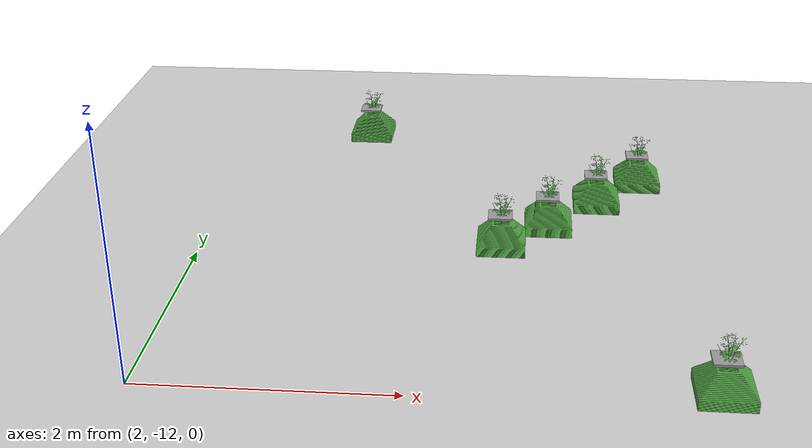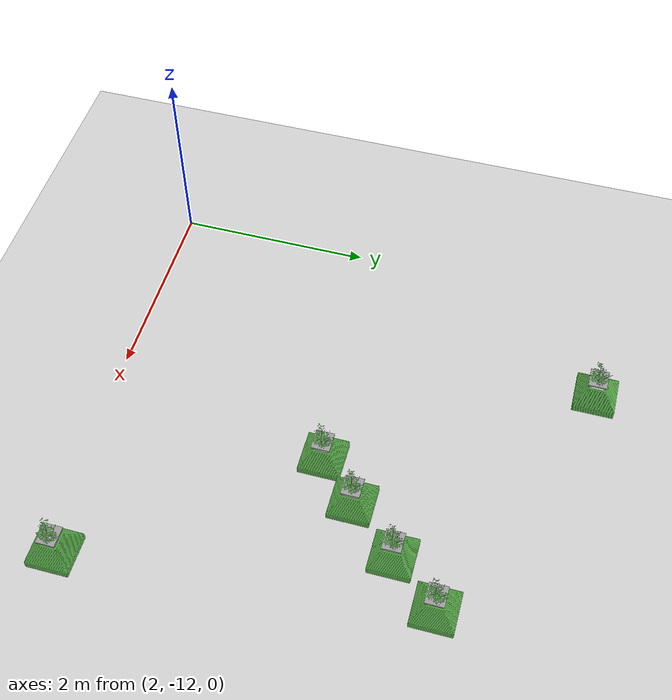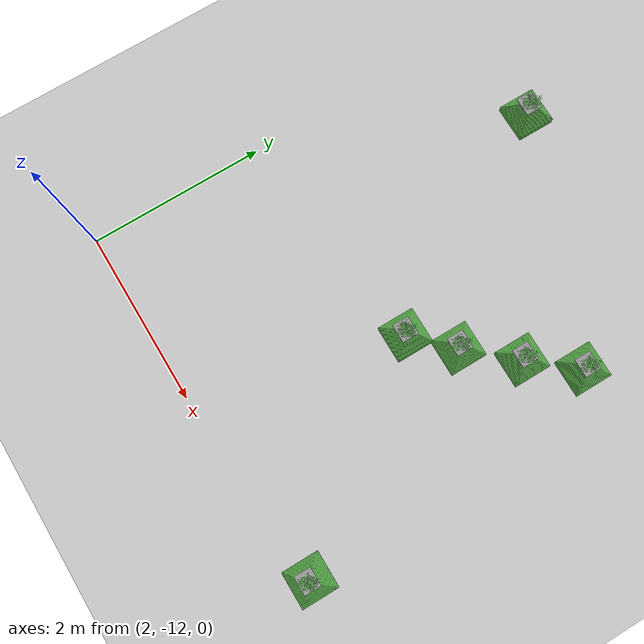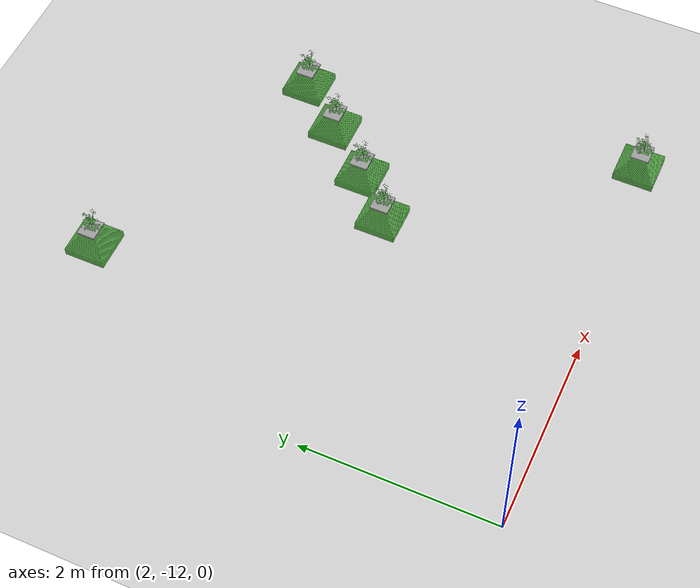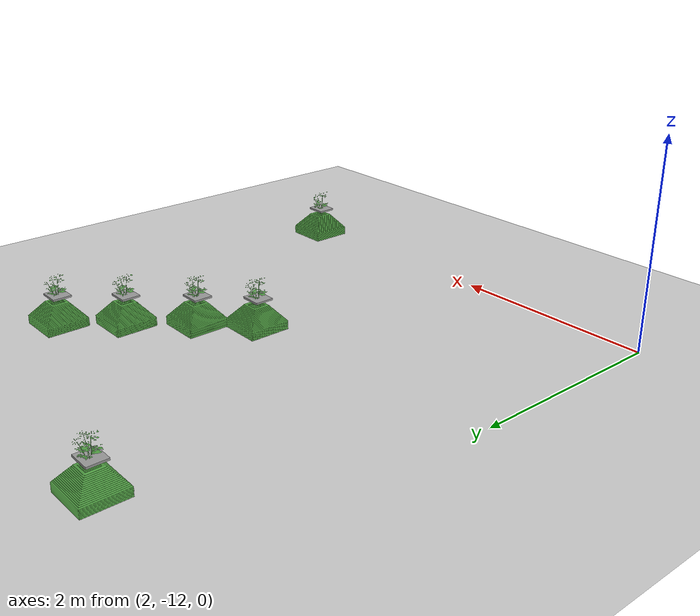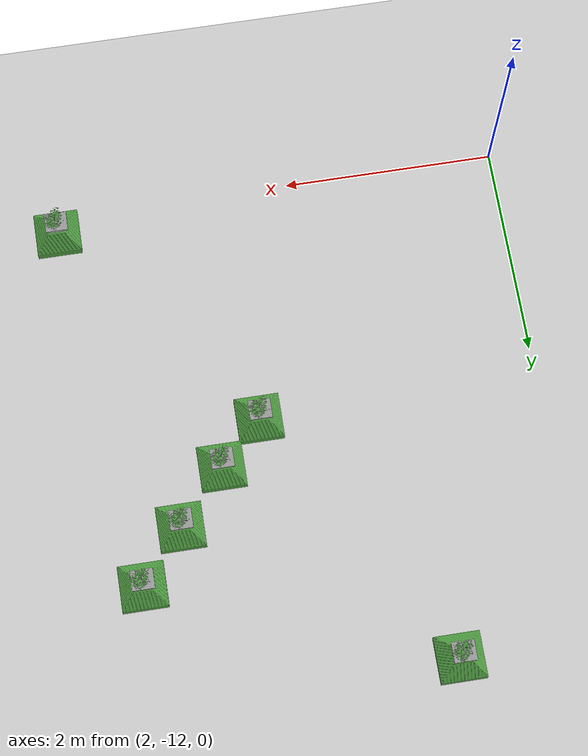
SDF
<sdf version="1.6">
 <world name="default">
  <model name="ground_plane">
   <static>1</static>
   <link name="link">
    <collision name="collision">
     <geometry><plane><normal>0 0 1</normal><size>100 100</size></plane></geometry>
     <surface><friction><ode><mu>100</mu><mu2>50</mu2></ode></friction></surface>
    </collision>
    <visual name="visual">
     <cast_shadows>0</cast_shadows>
     <geometry><plane><normal>0 0 1</normal><size>100 100</size></plane></geometry>
     <material>
      <script><uri>file://media/materials/scripts/gazebo.material</uri><name>Gazebo/Grey</name></script>
     </material>
    </visual>
   </link>
  </model>
  <model name="plant_126">
   <link name="link_0">
    <inertial>
     <mass>1</mass>
     <inertia>
      <ixx>0.0134051</ixx>
      <ixy>0</ixy>
      <ixz>0</ixz>
      <iyy>0.0134051</iyy>
      <iyz>0</iyz>
      <izz>0.0254102</izz>
     </inertia>
    </inertial>
    <gravity>0</gravity>
    <visual name="visual">
     <geometry><mesh><uri>model://square_pot/pot.stl</uri><scale>0.033 0.033 0.02</scale></mesh></geometry>
     <material>
      <lighting>1</lighting>
      <script><uri>file://media/materials/scripts/gazebo.material</uri><name>Gazebo/Grass</name></script>
      <ambient>0.3 0.3 0.3 1</ambient>
      <diffuse>0.7 0.7 0.7 1</diffuse>
      <specular>0.01 0.01 0.01 1</specular>
      <emissive>0 0 0 1</emissive>
      <shader type="vertex"><normal_map>__default__</normal_map></shader>
     </material>
    </visual>
    <collision name="collision">
     <pose>0 0 0.25 0 -0 0</pose>
     <geometry><box><size>0.4 0.4 0.4</size></box></geometry>
     <surface>
      <friction>
       <ode><mu>1</mu><mu2>1</mu2><fdir1>0 0 0</fdir1><slip1>0</slip1><slip2>0</slip2></ode>
       <torsional>
        <coefficient>1</coefficient>
        <patch_radius>0</patch_radius>
        <surface_radius>0</surface_radius>
        <use_patch_radius>1</use_patch_radius>
        <ode><slip>0</slip></ode>
       </torsional>
      </friction>
      <bounce><restitution_coefficient>0</restitution_coefficient><threshold>1e+06</threshold></bounce>
      <contact>
       <collide_without_contact>1</collide_without_contact>
       <collide_without_contact_bitmask>1</collide_without_contact_bitmask>
       <collide_bitmask>1</collide_bitmask>
       <ode>
        <soft_cfm>0</soft_cfm>
        <soft_erp>0.2</soft_erp>
        <kp>1e+13</kp>
        <kd>1</kd>
        <max_vel>0.01</max_vel>
        <min_depth>0</min_depth>
       </ode>
       <bullet>
        <split_impulse>1</split_impulse>
        <split_impulse_penetration_threshold>-0.01</split_impulse_penetration_threshold>
        <soft_cfm>0</soft_cfm>
        <soft_erp>0.2</soft_erp>
        <kp>1e+13</kp>
        <kd>1</kd>
       </bullet>
      </contact>
     </surface>
    </collision>
   </link>
   <link name="link_0_0">
    <pose>-0.011441 -0.008338 0.308474 0 -0 0</pose>
    <inertial>
     <mass>0.000736153</mass>
     <inertia>
      <ixx>2.11165e-06</ixx>
      <ixy>0</ixy>
      <ixz>0</ixz>
      <iyy>2.64382e-06</iyy>
      <iyz>0</iyz>
      <izz>4.70976e-06</izz>
     </inertia>
    </inertial>
    <visual name="visual">
     <geometry><box><size>0.206678 0.18452 0.019291</size></box></geometry>
     <material>
      <lighting>1</lighting>
      <script><uri>file://media/materials/scripts/gazebo.material</uri><name>Gazebo/Grey</name></script>
      <ambient>0.3 0.3 0.3 1</ambient>
      <diffuse>0.7 0.7 0.7 1</diffuse>
      <specular>0.01 0.01 0.01 1</specular>
      <emissive>0 0 0 1</emissive>
     </material>
    </visual>
    <collision name="collision">
     <geometry><box><size>0.206678 0.18452 0.019291</size></box></geometry>
     <surface>
      <friction>
       <ode><mu>1</mu><mu2>1</mu2><fdir1>0 0 0</fdir1><slip1>0</slip1><slip2>0</slip2></ode>
       <torsional>
        <coefficient>1</coefficient>
        <patch_radius>0</patch_radius>
        <surface_radius>0</surface_radius>
        <use_patch_radius>1</use_patch_radius>
        <ode><slip>0</slip></ode>
       </torsional>
      </friction>
      <bounce><restitution_coefficient>0</restitution_coefficient><threshold>1e+06</threshold></bounce>
      <contact>
       <collide_without_contact>0</collide_without_contact>
       <collide_without_contact_bitmask>1</collide_without_contact_bitmask>
       <collide_bitmask>1</collide_bitmask>
       <ode>
        <soft_cfm>0</soft_cfm>
        <soft_erp>0.2</soft_erp>
        <kp>1e+13</kp>
        <kd>1</kd>
        <max_vel>0.01</max_vel>
        <min_depth>0</min_depth>
       </ode>
       <bullet>
        <split_impulse>1</split_impulse>
        <split_impulse_penetration_threshold>-0.01</split_impulse_penetration_threshold>
        <soft_cfm>0</soft_cfm>
        <soft_erp>0.2</soft_erp>
        <kp>1e+13</kp>
        <kd>1</kd>
       </bullet>
      </contact>
     </surface>
    </collision>
   </link>
   <static>1</static>
   <pose>3.1882 -7.23315 0 0 -0 0</pose>
  </model>
  <model name="plant_130">
   <link name="link_0">
    <inertial>
     <mass>1</mass>
     <inertia>
      <ixx>0.0134051</ixx>
      <ixy>0</ixy>
      <ixz>0</ixz>
      <iyy>0.0134051</iyy>
      <iyz>0</iyz>
      <izz>0.0254102</izz>
     </inertia>
    </inertial>
    <gravity>0</gravity>
    <visual name="visual">
     <geometry><mesh><uri>model://square_pot/pot.stl</uri><scale>0.033 0.033 0.02</scale></mesh></geometry>
     <material>
      <lighting>1</lighting>
      <script><uri>file://media/materials/scripts/gazebo.material</uri><name>Gazebo/Grass</name></script>
      <ambient>0.3 0.3 0.3 1</ambient>
      <diffuse>0.7 0.7 0.7 1</diffuse>
      <specular>0.01 0.01 0.01 1</specular>
      <emissive>0 0 0 1</emissive>
      <shader type="vertex"><normal_map>__default__</normal_map></shader>
     </material>
    </visual>
    <collision name="collision">
     <pose>0 0 0.25 0 -0 0</pose>
     <geometry><box><size>0.4 0.4 0.4</size></box></geometry>
     <surface>
      <friction>
       <ode><mu>1</mu><mu2>1</mu2><fdir1>0 0 0</fdir1><slip1>0</slip1><slip2>0</slip2></ode>
       <torsional>
        <coefficient>1</coefficient>
        <patch_radius>0</patch_radius>
        <surface_radius>0</surface_radius>
        <use_patch_radius>1</use_patch_radius>
        <ode><slip>0</slip></ode>
       </torsional>
      </friction>
      <bounce><restitution_coefficient>0</restitution_coefficient><threshold>1e+06</threshold></bounce>
      <contact>
       <collide_without_contact>1</collide_without_contact>
       <collide_without_contact_bitmask>1</collide_without_contact_bitmask>
       <collide_bitmask>1</collide_bitmask>
       <ode>
        <soft_cfm>0</soft_cfm>
        <soft_erp>0.2</soft_erp>
        <kp>1e+13</kp>
        <kd>1</kd>
        <max_vel>0.01</max_vel>
        <min_depth>0</min_depth>
       </ode>
       <bullet>
        <split_impulse>1</split_impulse>
        <split_impulse_penetration_threshold>-0.01</split_impulse_penetration_threshold>
        <soft_cfm>0</soft_cfm>
        <soft_erp>0.2</soft_erp>
        <kp>1e+13</kp>
        <kd>1</kd>
       </bullet>
      </contact>
     </surface>
    </collision>
   </link>
   <link name="link_0_0">
    <pose>-0.011441 -0.008338 0.308474 0 -0 0</pose>
    <inertial>
     <mass>0.000736153</mass>
     <inertia>
      <ixx>2.11165e-06</ixx>
      <ixy>0</ixy>
      <ixz>0</ixz>
      <iyy>2.64382e-06</iyy>
      <iyz>0</iyz>
      <izz>4.70976e-06</izz>
     </inertia>
    </inertial>
    <visual name="visual">
     <geometry><box><size>0.206678 0.18452 0.019291</size></box></geometry>
     <material>
      <lighting>1</lighting>
      <script><uri>file://media/materials/scripts/gazebo.material</uri><name>Gazebo/Grey</name></script>
      <ambient>0.3 0.3 0.3 1</ambient>
      <diffuse>0.7 0.7 0.7 1</diffuse>
      <specular>0.01 0.01 0.01 1</specular>
      <emissive>0 0 0 1</emissive>
     </material>
    </visual>
    <collision name="collision">
     <geometry><box><size>0.206678 0.18452 0.019291</size></box></geometry>
     <surface>
      <friction>
       <ode><mu>1</mu><mu2>1</mu2><fdir1>0 0 0</fdir1><slip1>0</slip1><slip2>0</slip2></ode>
       <torsional>
        <coefficient>1</coefficient>
        <patch_radius>0</patch_radius>
        <surface_radius>0</surface_radius>
        <use_patch_radius>1</use_patch_radius>
        <ode><slip>0</slip></ode>
       </torsional>
      </friction>
      <bounce><restitution_coefficient>0</restitution_coefficient><threshold>1e+06</threshold></bounce>
      <contact>
       <collide_without_contact>0</collide_without_contact>
       <collide_without_contact_bitmask>1</collide_without_contact_bitmask>
       <collide_bitmask>1</collide_bitmask>
       <ode>
        <soft_cfm>0</soft_cfm>
        <soft_erp>0.2</soft_erp>
        <kp>1e+13</kp>
        <kd>1</kd>
        <max_vel>0.01</max_vel>
        <min_depth>0</min_depth>
       </ode>
       <bullet>
        <split_impulse>1</split_impulse>
        <split_impulse_penetration_threshold>-0.01</split_impulse_penetration_threshold>
        <soft_cfm>0</soft_cfm>
        <soft_erp>0.2</soft_erp>
        <kp>1e+13</kp>
        <kd>1</kd>
       </bullet>
      </contact>
     </surface>
    </collision>
   </link>
   <static>1</static>
   <pose>5.87937 -8.29772 0 0 -0 0</pose>
  </model>
  <model name="plant_131">
   <link name="link_0">
    <inertial>
     <mass>1</mass>
     <inertia>
      <ixx>0.0134051</ixx>
      <ixy>0</ixy>
      <ixz>0</ixz>
      <iyy>0.0134051</iyy>
      <iyz>0</iyz>
      <izz>0.0254102</izz>
     </inertia>
    </inertial>
    <gravity>0</gravity>
    <visual name="visual">
     <geometry><mesh><uri>model://square_pot/pot.stl</uri><scale>0.033 0.033 0.02</scale></mesh></geometry>
     <material>
      <lighting>1</lighting>
      <script><uri>file://media/materials/scripts/gazebo.material</uri><name>Gazebo/Grass</name></script>
      <ambient>0.3 0.3 0.3 1</ambient>
      <diffuse>0.7 0.7 0.7 1</diffuse>
      <specular>0.01 0.01 0.01 1</specular>
      <emissive>0 0 0 1</emissive>
      <shader type="vertex"><normal_map>__default__</normal_map></shader>
     </material>
    </visual>
    <collision name="collision">
     <pose>0 0 0.25 0 -0 0</pose>
     <geometry><box><size>0.4 0.4 0.4</size></box></geometry>
     <surface>
      <friction>
       <ode><mu>1</mu><mu2>1</mu2><fdir1>0 0 0</fdir1><slip1>0</slip1><slip2>0</slip2></ode>
       <torsional>
        <coefficient>1</coefficient>
        <patch_radius>0</patch_radius>
        <surface_radius>0</surface_radius>
        <use_patch_radius>1</use_patch_radius>
        <ode><slip>0</slip></ode>
       </torsional>
      </friction>
      <bounce><restitution_coefficient>0</restitution_coefficient><threshold>1e+06</threshold></bounce>
      <contact>
       <collide_without_contact>1</collide_without_contact>
       <collide_without_contact_bitmask>1</collide_without_contact_bitmask>
       <collide_bitmask>1</collide_bitmask>
       <ode>
        <soft_cfm>0</soft_cfm>
        <soft_erp>0.2</soft_erp>
        <kp>1e+13</kp>
        <kd>1</kd>
        <max_vel>0.01</max_vel>
        <min_depth>0</min_depth>
       </ode>
       <bullet>
        <split_impulse>1</split_impulse>
        <split_impulse_penetration_threshold>-0.01</split_impulse_penetration_threshold>
        <soft_cfm>0</soft_cfm>
        <soft_erp>0.2</soft_erp>
        <kp>1e+13</kp>
        <kd>1</kd>
       </bullet>
      </contact>
     </surface>
    </collision>
   </link>
   <link name="link_0_0">
    <pose>-0.011441 -0.008338 0.308474 0 -0 0</pose>
    <inertial>
     <mass>0.000736153</mass>
     <inertia>
      <ixx>2.11165e-06</ixx>
      <ixy>0</ixy>
      <ixz>0</ixz>
      <iyy>2.64382e-06</iyy>
      <iyz>0</iyz>
      <izz>4.70976e-06</izz>
     </inertia>
    </inertial>
    <visual name="visual">
     <geometry><box><size>0.206678 0.18452 0.019291</size></box></geometry>
     <material>
      <lighting>1</lighting>
      <script><uri>file://media/materials/scripts/gazebo.material</uri><name>Gazebo/Grey</name></script>
      <ambient>0.3 0.3 0.3 1</ambient>
      <diffuse>0.7 0.7 0.7 1</diffuse>
      <specular>0.01 0.01 0.01 1</specular>
      <emissive>0 0 0 1</emissive>
     </material>
    </visual>
    <collision name="collision">
     <geometry><box><size>0.206678 0.18452 0.019291</size></box></geometry>
     <surface>
      <friction>
       <ode><mu>1</mu><mu2>1</mu2><fdir1>0 0 0</fdir1><slip1>0</slip1><slip2>0</slip2></ode>
       <torsional>
        <coefficient>1</coefficient>
        <patch_radius>0</patch_radius>
        <surface_radius>0</surface_radius>
        <use_patch_radius>1</use_patch_radius>
        <ode><slip>0</slip></ode>
       </torsional>
      </friction>
      <bounce><restitution_coefficient>0</restitution_coefficient><threshold>1e+06</threshold></bounce>
      <contact>
       <collide_without_contact>0</collide_without_contact>
       <collide_without_contact_bitmask>1</collide_without_contact_bitmask>
       <collide_bitmask>1</collide_bitmask>
       <ode>
        <soft_cfm>0</soft_cfm>
        <soft_erp>0.2</soft_erp>
        <kp>1e+13</kp>
        <kd>1</kd>
        <max_vel>0.01</max_vel>
        <min_depth>0</min_depth>
       </ode>
       <bullet>
        <split_impulse>1</split_impulse>
        <split_impulse_penetration_threshold>-0.01</split_impulse_penetration_threshold>
        <soft_cfm>0</soft_cfm>
        <soft_erp>0.2</soft_erp>
        <kp>1e+13</kp>
        <kd>1</kd>
       </bullet>
      </contact>
     </surface>
    </collision>
   </link>
   <static>1</static>
   <pose>5.4688 -8.78854 0 0 -0 0</pose>
  </model>
  <model name="plant_132">
   <link name="link_0">
    <inertial>
     <mass>1</mass>
     <inertia>
      <ixx>0.0134051</ixx>
      <ixy>0</ixy>
      <ixz>0</ixz>
      <iyy>0.0134051</iyy>
      <iyz>0</iyz>
      <izz>0.0254102</izz>
     </inertia>
    </inertial>
    <gravity>0</gravity>
    <visual name="visual">
     <geometry><mesh><uri>model://square_pot/pot.stl</uri><scale>0.033 0.033 0.02</scale></mesh></geometry>
     <material>
      <lighting>1</lighting>
      <script><uri>file://media/materials/scripts/gazebo.material</uri><name>Gazebo/Grass</name></script>
      <ambient>0.3 0.3 0.3 1</ambient>
      <diffuse>0.7 0.7 0.7 1</diffuse>
      <specular>0.01 0.01 0.01 1</specular>
      <emissive>0 0 0 1</emissive>
      <shader type="vertex"><normal_map>__default__</normal_map></shader>
     </material>
    </visual>
    <collision name="collision">
     <pose>0 0 0.25 0 -0 0</pose>
     <geometry><box><size>0.4 0.4 0.4</size></box></geometry>
     <surface>
      <friction>
       <ode><mu>1</mu><mu2>1</mu2><fdir1>0 0 0</fdir1><slip1>0</slip1><slip2>0</slip2></ode>
       <torsional>
        <coefficient>1</coefficient>
        <patch_radius>0</patch_radius>
        <surface_radius>0</surface_radius>
        <use_patch_radius>1</use_patch_radius>
        <ode><slip>0</slip></ode>
       </torsional>
      </friction>
      <bounce><restitution_coefficient>0</restitution_coefficient><threshold>1e+06</threshold></bounce>
      <contact>
       <collide_without_contact>1</collide_without_contact>
       <collide_without_contact_bitmask>1</collide_without_contact_bitmask>
       <collide_bitmask>1</collide_bitmask>
       <ode>
        <soft_cfm>0</soft_cfm>
        <soft_erp>0.2</soft_erp>
        <kp>1e+13</kp>
        <kd>1</kd>
        <max_vel>0.01</max_vel>
        <min_depth>0</min_depth>
       </ode>
       <bullet>
        <split_impulse>1</split_impulse>
        <split_impulse_penetration_threshold>-0.01</split_impulse_penetration_threshold>
        <soft_cfm>0</soft_cfm>
        <soft_erp>0.2</soft_erp>
        <kp>1e+13</kp>
        <kd>1</kd>
       </bullet>
      </contact>
     </surface>
    </collision>
   </link>
   <link name="link_0_0">
    <pose>-0.011441 -0.008338 0.308474 0 -0 0</pose>
    <inertial>
     <mass>0.000736153</mass>
     <inertia>
      <ixx>2.11165e-06</ixx>
      <ixy>0</ixy>
      <ixz>0</ixz>
      <iyy>2.64382e-06</iyy>
      <iyz>0</iyz>
      <izz>4.70976e-06</izz>
     </inertia>
    </inertial>
    <visual name="visual">
     <geometry><box><size>0.206678 0.18452 0.019291</size></box></geometry>
     <material>
      <lighting>1</lighting>
      <script><uri>file://media/materials/scripts/gazebo.material</uri><name>Gazebo/Grey</name></script>
      <ambient>0.3 0.3 0.3 1</ambient>
      <diffuse>0.7 0.7 0.7 1</diffuse>
      <specular>0.01 0.01 0.01 1</specular>
      <emissive>0 0 0 1</emissive>
     </material>
    </visual>
    <collision name="collision">
     <geometry><box><size>0.206678 0.18452 0.019291</size></box></geometry>
     <surface>
      <friction>
       <ode><mu>1</mu><mu2>1</mu2><fdir1>0 0 0</fdir1><slip1>0</slip1><slip2>0</slip2></ode>
       <torsional>
        <coefficient>1</coefficient>
        <patch_radius>0</patch_radius>
        <surface_radius>0</surface_radius>
        <use_patch_radius>1</use_patch_radius>
        <ode><slip>0</slip></ode>
       </torsional>
      </friction>
      <bounce><restitution_coefficient>0</restitution_coefficient><threshold>1e+06</threshold></bounce>
      <contact>
       <collide_without_contact>0</collide_without_contact>
       <collide_without_contact_bitmask>1</collide_without_contact_bitmask>
       <collide_bitmask>1</collide_bitmask>
       <ode>
        <soft_cfm>0</soft_cfm>
        <soft_erp>0.2</soft_erp>
        <kp>1e+13</kp>
        <kd>1</kd>
        <max_vel>0.01</max_vel>
        <min_depth>0</min_depth>
       </ode>
       <bullet>
        <split_impulse>1</split_impulse>
        <split_impulse_penetration_threshold>-0.01</split_impulse_penetration_threshold>
        <soft_cfm>0</soft_cfm>
        <soft_erp>0.2</soft_erp>
        <kp>1e+13</kp>
        <kd>1</kd>
       </bullet>
      </contact>
     </surface>
    </collision>
   </link>
   <static>1</static>
   <pose>5.02159 -9.29224 0 0 -0 0</pose>
  </model>
  <model name="plant_133">
   <link name="link_0">
    <inertial>
     <mass>1</mass>
     <inertia>
      <ixx>0.0134051</ixx>
      <ixy>0</ixy>
      <ixz>0</ixz>
      <iyy>0.0134051</iyy>
      <iyz>0</iyz>
      <izz>0.0254102</izz>
     </inertia>
    </inertial>
    <gravity>0</gravity>
    <visual name="visual">
     <geometry><mesh><uri>model://square_pot/pot.stl</uri><scale>0.033 0.033 0.02</scale></mesh></geometry>
     <material>
      <lighting>1</lighting>
      <script><uri>file://media/materials/scripts/gazebo.material</uri><name>Gazebo/Grass</name></script>
      <ambient>0.3 0.3 0.3 1</ambient>
      <diffuse>0.7 0.7 0.7 1</diffuse>
      <specular>0.01 0.01 0.01 1</specular>
      <emissive>0 0 0 1</emissive>
      <shader type="vertex"><normal_map>__default__</normal_map></shader>
     </material>
    </visual>
    <collision name="collision">
     <pose>0 0 0.25 0 -0 0</pose>
     <geometry><box><size>0.4 0.4 0.4</size></box></geometry>
     <surface>
      <friction>
       <ode><mu>1</mu><mu2>1</mu2><fdir1>0 0 0</fdir1><slip1>0</slip1><slip2>0</slip2></ode>
       <torsional>
        <coefficient>1</coefficient>
        <patch_radius>0</patch_radius>
        <surface_radius>0</surface_radius>
        <use_patch_radius>1</use_patch_radius>
        <ode><slip>0</slip></ode>
       </torsional>
      </friction>
      <bounce><restitution_coefficient>0</restitution_coefficient><threshold>1e+06</threshold></bounce>
      <contact>
       <collide_without_contact>1</collide_without_contact>
       <collide_without_contact_bitmask>1</collide_without_contact_bitmask>
       <collide_bitmask>1</collide_bitmask>
       <ode>
        <soft_cfm>0</soft_cfm>
        <soft_erp>0.2</soft_erp>
        <kp>1e+13</kp>
        <kd>1</kd>
        <max_vel>0.01</max_vel>
        <min_depth>0</min_depth>
       </ode>
       <bullet>
        <split_impulse>1</split_impulse>
        <split_impulse_penetration_threshold>-0.01</split_impulse_penetration_threshold>
        <soft_cfm>0</soft_cfm>
        <soft_erp>0.2</soft_erp>
        <kp>1e+13</kp>
        <kd>1</kd>
       </bullet>
      </contact>
     </surface>
    </collision>
   </link>
   <link name="link_0_0">
    <pose>-0.011441 -0.008338 0.308474 0 -0 0</pose>
    <inertial>
     <mass>0.000736153</mass>
     <inertia>
      <ixx>2.11165e-06</ixx>
      <ixy>0</ixy>
      <ixz>0</ixz>
      <iyy>2.64382e-06</iyy>
      <iyz>0</iyz>
      <izz>4.70976e-06</izz>
     </inertia>
    </inertial>
    <visual name="visual">
     <geometry><box><size>0.206678 0.18452 0.019291</size></box></geometry>
     <material>
      <lighting>1</lighting>
      <script><uri>file://media/materials/scripts/gazebo.material</uri><name>Gazebo/Grey</name></script>
      <ambient>0.3 0.3 0.3 1</ambient>
      <diffuse>0.7 0.7 0.7 1</diffuse>
      <specular>0.01 0.01 0.01 1</specular>
      <emissive>0 0 0 1</emissive>
     </material>
    </visual>
    <collision name="collision">
     <geometry><box><size>0.206678 0.18452 0.019291</size></box></geometry>
     <surface>
      <friction>
       <ode><mu>1</mu><mu2>1</mu2><fdir1>0 0 0</fdir1><slip1>0</slip1><slip2>0</slip2></ode>
       <torsional>
        <coefficient>1</coefficient>
        <patch_radius>0</patch_radius>
        <surface_radius>0</surface_radius>
        <use_patch_radius>1</use_patch_radius>
        <ode><slip>0</slip></ode>
       </torsional>
      </friction>
      <bounce><restitution_coefficient>0</restitution_coefficient><threshold>1e+06</threshold></bounce>
      <contact>
       <collide_without_contact>0</collide_without_contact>
       <collide_without_contact_bitmask>1</collide_without_contact_bitmask>
       <collide_bitmask>1</collide_bitmask>
       <ode>
        <soft_cfm>0</soft_cfm>
        <soft_erp>0.2</soft_erp>
        <kp>1e+13</kp>
        <kd>1</kd>
        <max_vel>0.01</max_vel>
        <min_depth>0</min_depth>
       </ode>
       <bullet>
        <split_impulse>1</split_impulse>
        <split_impulse_penetration_threshold>-0.01</split_impulse_penetration_threshold>
        <soft_cfm>0</soft_cfm>
        <soft_erp>0.2</soft_erp>
        <kp>1e+13</kp>
        <kd>1</kd>
       </bullet>
      </contact>
     </surface>
    </collision>
   </link>
   <static>1</static>
   <pose>4.61341 -9.69567 0 0 -0 0</pose>
  </model>
  <model name="plant_142">
   <link name="link_0">
    <inertial>
     <mass>1</mass>
     <inertia>
      <ixx>0.0134051</ixx>
      <ixy>0</ixy>
      <ixz>0</ixz>
      <iyy>0.0134051</iyy>
      <iyz>0</iyz>
      <izz>0.0254102</izz>
     </inertia>
    </inertial>
    <gravity>0</gravity>
    <visual name="visual">
     <geometry><mesh><uri>model://square_pot/pot.stl</uri><scale>0.033 0.033 0.02</scale></mesh></geometry>
     <material>
      <lighting>1</lighting>
      <script><uri>file://media/materials/scripts/gazebo.material</uri><name>Gazebo/Grass</name></script>
      <ambient>0.3 0.3 0.3 1</ambient>
      <diffuse>0.7 0.7 0.7 1</diffuse>
      <specular>0.01 0.01 0.01 1</specular>
      <emissive>0 0 0 1</emissive>
      <shader type="vertex"><normal_map>__default__</normal_map></shader>
     </material>
    </visual>
    <collision name="collision">
     <pose>0 0 0.25 0 -0 0</pose>
     <geometry><box><size>0.4 0.4 0.4</size></box></geometry>
     <surface>
      <friction>
       <ode><mu>1</mu><mu2>1</mu2><fdir1>0 0 0</fdir1><slip1>0</slip1><slip2>0</slip2></ode>
       <torsional>
        <coefficient>1</coefficient>
        <patch_radius>0</patch_radius>
        <surface_radius>0</surface_radius>
        <use_patch_radius>1</use_patch_radius>
        <ode><slip>0</slip></ode>
       </torsional>
      </friction>
      <bounce><restitution_coefficient>0</restitution_coefficient><threshold>1e+06</threshold></bounce>
      <contact>
       <collide_without_contact>1</collide_without_contact>
       <collide_without_contact_bitmask>1</collide_without_contact_bitmask>
       <collide_bitmask>1</collide_bitmask>
       <ode>
        <soft_cfm>0</soft_cfm>
        <soft_erp>0.2</soft_erp>
        <kp>1e+13</kp>
        <kd>1</kd>
        <max_vel>0.01</max_vel>
        <min_depth>0</min_depth>
       </ode>
       <bullet>
        <split_impulse>1</split_impulse>
        <split_impulse_penetration_threshold>-0.01</split_impulse_penetration_threshold>
        <soft_cfm>0</soft_cfm>
        <soft_erp>0.2</soft_erp>
        <kp>1e+13</kp>
        <kd>1</kd>
       </bullet>
      </contact>
     </surface>
    </collision>
   </link>
   <link name="link_0_0">
    <pose>-0.011441 -0.008338 0.308474 0 -0 0</pose>
    <inertial>
     <mass>0.000736153</mass>
     <inertia>
      <ixx>2.11165e-06</ixx>
      <ixy>0</ixy>
      <ixz>0</ixz>
      <iyy>2.64382e-06</iyy>
      <iyz>0</iyz>
      <izz>4.70976e-06</izz>
     </inertia>
    </inertial>
    <visual name="visual">
     <geometry><box><size>0.206678 0.18452 0.019291</size></box></geometry>
     <material>
      <lighting>1</lighting>
      <script><uri>file://media/materials/scripts/gazebo.material</uri><name>Gazebo/Grey</name></script>
      <ambient>0.3 0.3 0.3 1</ambient>
      <diffuse>0.7 0.7 0.7 1</diffuse>
      <specular>0.01 0.01 0.01 1</specular>
      <emissive>0 0 0 1</emissive>
     </material>
    </visual>
    <collision name="collision">
     <geometry><box><size>0.206678 0.18452 0.019291</size></box></geometry>
     <surface>
      <friction>
       <ode><mu>1</mu><mu2>1</mu2><fdir1>0 0 0</fdir1><slip1>0</slip1><slip2>0</slip2></ode>
       <torsional>
        <coefficient>1</coefficient>
        <patch_radius>0</patch_radius>
        <surface_radius>0</surface_radius>
        <use_patch_radius>1</use_patch_radius>
        <ode><slip>0</slip></ode>
       </torsional>
      </friction>
      <bounce><restitution_coefficient>0</restitution_coefficient><threshold>1e+06</threshold></bounce>
      <contact>
       <collide_without_contact>0</collide_without_contact>
       <collide_without_contact_bitmask>1</collide_without_contact_bitmask>
       <collide_bitmask>1</collide_bitmask>
       <ode>
        <soft_cfm>0</soft_cfm>
        <soft_erp>0.2</soft_erp>
        <kp>1e+13</kp>
        <kd>1</kd>
        <max_vel>0.01</max_vel>
        <min_depth>0</min_depth>
       </ode>
       <bullet>
        <split_impulse>1</split_impulse>
        <split_impulse_penetration_threshold>-0.01</split_impulse_penetration_threshold>
        <soft_cfm>0</soft_cfm>
        <soft_erp>0.2</soft_erp>
        <kp>1e+13</kp>
        <kd>1</kd>
       </bullet>
      </contact>
     </surface>
    </collision>
   </link>
   <static>1</static>
   <pose>6.23806 -11.823 0 0 -0 0</pose>
  </model>
 </world>
</sdf>
